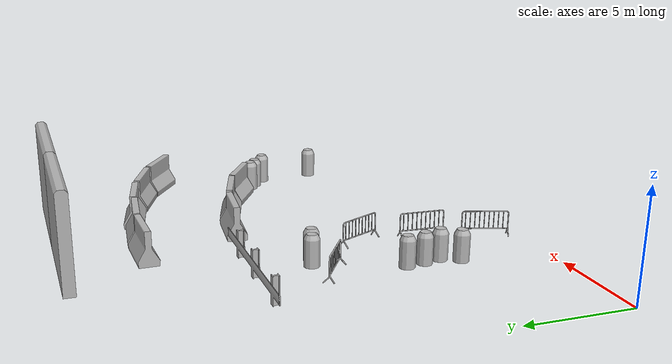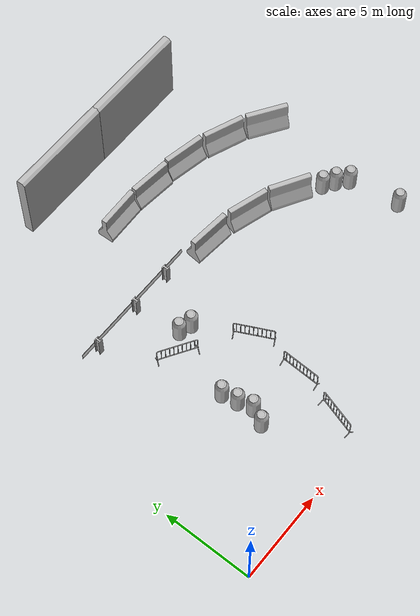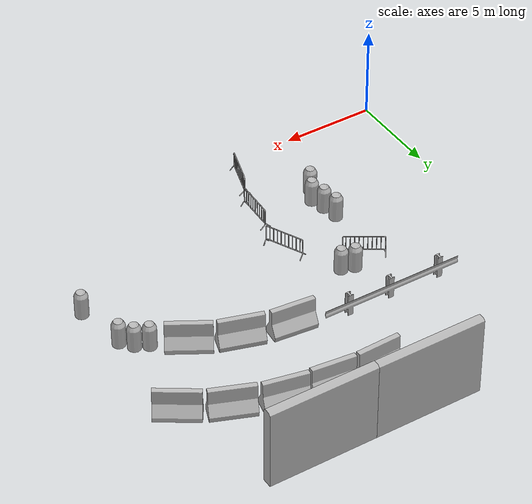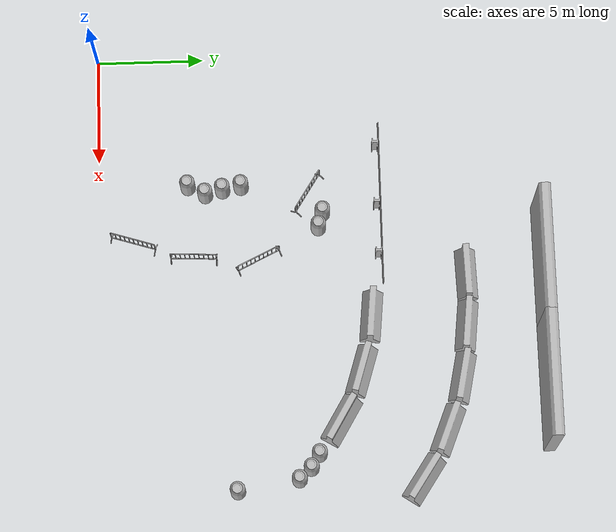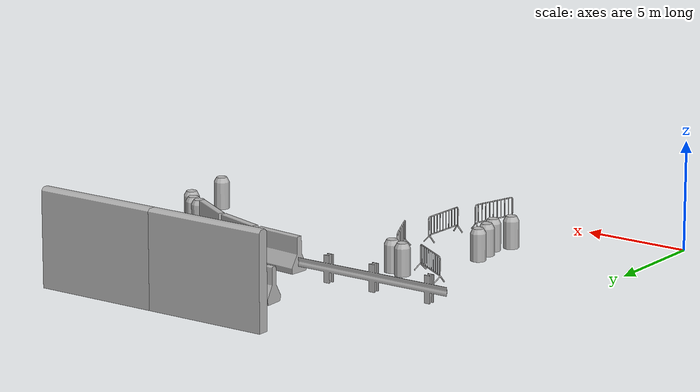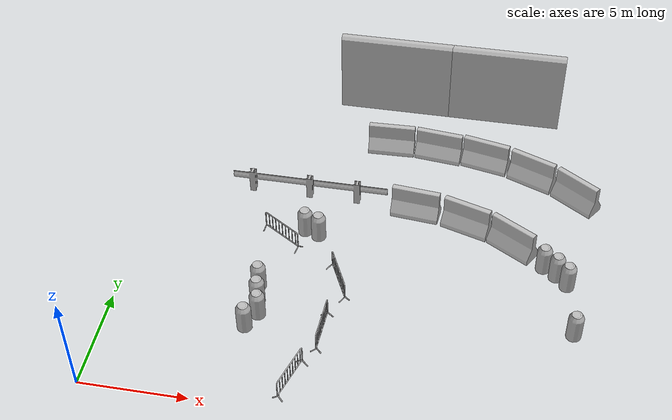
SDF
<sdf version="1.6">
 <world name="default">
  <model name="aws_robomaker_racetrack_CrashworthBucket_01_08">
   <link name="aws_CrashworthBucket_01::body">
    <inertial>
     <mass>5</mass>
     <inertia><ixx>1</ixx><ixy>0</ixy><ixz>0</ixz><iyy>1</iyy><iyz>0</iyz><izz>1</izz></inertia>
    </inertial>
    <visual name="visual">
     <geometry>
      <mesh>
       <uri>file://models/aws_robomaker_racetrack_CrashworthBucket_01/meshes/aws_CrashworthBucket_01_visual.DAE</uri>
      </mesh>
     </geometry>
     <material><shader type="pixel"><normal_map>__default__</normal_map></shader></material>
     <meta><layer>0</layer></meta>
    </visual>
    <collision name="collision_0">
     <geometry>
      <mesh>
       <uri>file://models/aws_robomaker_racetrack_CrashworthBucket_01/meshes/aws_CrashworthBucket_01_collision.DAE</uri>
       <scale>1 1 1</scale>
      </mesh>
     </geometry>
     <surface>
      <friction>
       <ode><mu>1</mu><mu2>1</mu2><fdir1>0 0 0</fdir1><slip1>0</slip1><slip2>0</slip2></ode>
       <torsional>
        <coefficient>1</coefficient>
        <patch_radius>0</patch_radius>
        <surface_radius>0</surface_radius>
        <use_patch_radius>1</use_patch_radius>
        <ode><slip>0</slip></ode>
       </torsional>
      </friction>
      <bounce><restitution_coefficient>0</restitution_coefficient><threshold>1e+06</threshold></bounce>
      <contact>
       <collide_without_contact>0</collide_without_contact>
       <collide_without_contact_bitmask>1</collide_without_contact_bitmask>
       <collide_bitmask>1</collide_bitmask>
       <ode>
        <soft_cfm>0</soft_cfm>
        <soft_erp>0.2</soft_erp>
        <kp>1e+13</kp>
        <kd>1</kd>
        <max_vel>0.01</max_vel>
        <min_depth>0</min_depth>
       </ode>
       <bullet>
        <split_impulse>1</split_impulse>
        <split_impulse_penetration_threshold>-0.01</split_impulse_penetration_threshold>
        <soft_cfm>0</soft_cfm>
        <soft_erp>0.2</soft_erp>
        <kp>1e+13</kp>
        <kd>1</kd>
       </bullet>
      </contact>
     </surface>
    </collision>
   </link>
   <static>1</static>
   <pose>8.58056 10.3426 0.054 0 -0 0</pose>
  </model>
  <model name="aws_robomaker_racetrack_CrashworthBucket_01_09">
   <link name="aws_CrashworthBucket_01::body">
    <inertial>
     <mass>5</mass>
     <inertia><ixx>1</ixx><ixy>0</ixy><ixz>0</ixz><iyy>1</iyy><iyz>0</iyz><izz>1</izz></inertia>
    </inertial>
    <visual name="visual">
     <geometry>
      <mesh>
       <uri>file://models/aws_robomaker_racetrack_CrashworthBucket_01/meshes/aws_CrashworthBucket_01_visual.DAE</uri>
      </mesh>
     </geometry>
     <material><shader type="pixel"><normal_map>__default__</normal_map></shader></material>
     <meta><layer>0</layer></meta>
    </visual>
    <collision name="collision_0">
     <geometry>
      <mesh>
       <uri>file://models/aws_robomaker_racetrack_CrashworthBucket_01/meshes/aws_CrashworthBucket_01_collision.DAE</uri>
       <scale>1 1 1</scale>
      </mesh>
     </geometry>
     <surface>
      <friction>
       <ode><mu>1</mu><mu2>1</mu2><fdir1>0 0 0</fdir1><slip1>0</slip1><slip2>0</slip2></ode>
       <torsional>
        <coefficient>1</coefficient>
        <patch_radius>0</patch_radius>
        <surface_radius>0</surface_radius>
        <use_patch_radius>1</use_patch_radius>
        <ode><slip>0</slip></ode>
       </torsional>
      </friction>
      <bounce><restitution_coefficient>0</restitution_coefficient><threshold>1e+06</threshold></bounce>
      <contact>
       <collide_without_contact>0</collide_without_contact>
       <collide_without_contact_bitmask>1</collide_without_contact_bitmask>
       <collide_bitmask>1</collide_bitmask>
       <ode>
        <soft_cfm>0</soft_cfm>
        <soft_erp>0.2</soft_erp>
        <kp>1e+13</kp>
        <kd>1</kd>
        <max_vel>0.01</max_vel>
        <min_depth>0</min_depth>
       </ode>
       <bullet>
        <split_impulse>1</split_impulse>
        <split_impulse_penetration_threshold>-0.01</split_impulse_penetration_threshold>
        <soft_cfm>0</soft_cfm>
        <soft_erp>0.2</soft_erp>
        <kp>1e+13</kp>
        <kd>1</kd>
       </bullet>
      </contact>
     </surface>
    </collision>
   </link>
   <static>1</static>
   <pose>7.88227 10.5539 0.054 0 -0 0</pose>
  </model>
  <model name="aws_robomaker_racetrack_CrashworthBucket_01_13">
   <link name="aws_CrashworthBucket_01::body">
    <inertial>
     <mass>5</mass>
     <inertia><ixx>1</ixx><ixy>0</ixy><ixz>0</ixz><iyy>1</iyy><iyz>0</iyz><izz>1</izz></inertia>
    </inertial>
    <visual name="visual">
     <geometry>
      <mesh>
       <uri>file://models/aws_robomaker_racetrack_CrashworthBucket_01/meshes/aws_CrashworthBucket_01_visual.DAE</uri>
      </mesh>
     </geometry>
     <material><shader type="pixel"><normal_map>__default__</normal_map></shader></material>
     <meta><layer>0</layer></meta>
    </visual>
    <collision name="collision_0">
     <geometry>
      <mesh>
       <uri>file://models/aws_robomaker_racetrack_CrashworthBucket_01/meshes/aws_CrashworthBucket_01_collision.DAE</uri>
       <scale>1 1 1</scale>
      </mesh>
     </geometry>
     <surface>
      <friction>
       <ode><mu>1</mu><mu2>1</mu2><fdir1>0 0 0</fdir1><slip1>0</slip1><slip2>0</slip2></ode>
       <torsional>
        <coefficient>1</coefficient>
        <patch_radius>0</patch_radius>
        <surface_radius>0</surface_radius>
        <use_patch_radius>1</use_patch_radius>
        <ode><slip>0</slip></ode>
       </torsional>
      </friction>
      <bounce><restitution_coefficient>0</restitution_coefficient><threshold>1e+06</threshold></bounce>
      <contact>
       <collide_without_contact>0</collide_without_contact>
       <collide_without_contact_bitmask>1</collide_without_contact_bitmask>
       <collide_bitmask>1</collide_bitmask>
       <ode>
        <soft_cfm>0</soft_cfm>
        <soft_erp>0.2</soft_erp>
        <kp>1e+13</kp>
        <kd>1</kd>
        <max_vel>0.01</max_vel>
        <min_depth>0</min_depth>
       </ode>
       <bullet>
        <split_impulse>1</split_impulse>
        <split_impulse_penetration_threshold>-0.01</split_impulse_penetration_threshold>
        <soft_cfm>0</soft_cfm>
        <soft_erp>0.2</soft_erp>
        <kp>1e+13</kp>
        <kd>1</kd>
       </bullet>
      </contact>
     </surface>
    </collision>
   </link>
   <static>1</static>
   <pose>20.9847 6.29253 0 0 -0 0</pose>
  </model>
  <model name="aws_robomaker_racetrack_CrashworthBucket_01_32">
   <link name="aws_CrashworthBucket_01::body">
    <inertial>
     <mass>5</mass>
     <inertia><ixx>1</ixx><ixy>0</ixy><ixz>0</ixz><iyy>1</iyy><iyz>0</iyz><izz>1</izz></inertia>
    </inertial>
    <visual name="visual">
     <geometry>
      <mesh>
       <uri>file://models/aws_robomaker_racetrack_CrashworthBucket_01/meshes/aws_CrashworthBucket_01_visual.DAE</uri>
      </mesh>
     </geometry>
     <material><shader type="pixel"><normal_map>__default__</normal_map></shader></material>
     <meta><layer>0</layer></meta>
    </visual>
    <collision name="collision_0">
     <geometry>
      <mesh>
       <uri>file://models/aws_robomaker_racetrack_CrashworthBucket_01/meshes/aws_CrashworthBucket_01_collision.DAE</uri>
       <scale>1 1 1</scale>
      </mesh>
     </geometry>
     <surface>
      <friction>
       <ode><mu>1</mu><mu2>1</mu2><fdir1>0 0 0</fdir1><slip1>0</slip1><slip2>0</slip2></ode>
       <torsional>
        <coefficient>1</coefficient>
        <patch_radius>0</patch_radius>
        <surface_radius>0</surface_radius>
        <use_patch_radius>1</use_patch_radius>
        <ode><slip>0</slip></ode>
       </torsional>
      </friction>
      <bounce><restitution_coefficient>0</restitution_coefficient><threshold>1e+06</threshold></bounce>
      <contact>
       <collide_without_contact>0</collide_without_contact>
       <collide_without_contact_bitmask>1</collide_without_contact_bitmask>
       <collide_bitmask>1</collide_bitmask>
       <ode>
        <soft_cfm>0</soft_cfm>
        <soft_erp>0.2</soft_erp>
        <kp>1e+13</kp>
        <kd>1</kd>
        <max_vel>0.01</max_vel>
        <min_depth>0</min_depth>
       </ode>
       <bullet>
        <split_impulse>1</split_impulse>
        <split_impulse_penetration_threshold>-0.01</split_impulse_penetration_threshold>
        <soft_cfm>0</soft_cfm>
        <soft_erp>0.2</soft_erp>
        <kp>1e+13</kp>
        <kd>1</kd>
       </bullet>
      </contact>
     </surface>
    </collision>
   </link>
   <static>1</static>
   <pose>20.5304 9.13561 0.054 0 0 -0.001449</pose>
  </model>
  <model name="aws_robomaker_racetrack_CrashworthBucket_01_33">
   <link name="aws_CrashworthBucket_01::body">
    <inertial>
     <mass>5</mass>
     <inertia><ixx>1</ixx><ixy>0</ixy><ixz>0</ixz><iyy>1</iyy><iyz>0</iyz><izz>1</izz></inertia>
    </inertial>
    <visual name="visual">
     <geometry>
      <mesh>
       <uri>file://models/aws_robomaker_racetrack_CrashworthBucket_01/meshes/aws_CrashworthBucket_01_visual.DAE</uri>
      </mesh>
     </geometry>
     <material><shader type="pixel"><normal_map>__default__</normal_map></shader></material>
     <meta><layer>0</layer></meta>
    </visual>
    <collision name="collision_0">
     <geometry>
      <mesh>
       <uri>file://models/aws_robomaker_racetrack_CrashworthBucket_01/meshes/aws_CrashworthBucket_01_collision.DAE</uri>
       <scale>1 1 1</scale>
      </mesh>
     </geometry>
     <surface>
      <friction>
       <ode><mu>1</mu><mu2>1</mu2><fdir1>0 0 0</fdir1><slip1>0</slip1><slip2>0</slip2></ode>
       <torsional>
        <coefficient>1</coefficient>
        <patch_radius>0</patch_radius>
        <surface_radius>0</surface_radius>
        <use_patch_radius>1</use_patch_radius>
        <ode><slip>0</slip></ode>
       </torsional>
      </friction>
      <bounce><restitution_coefficient>0</restitution_coefficient><threshold>1e+06</threshold></bounce>
      <contact>
       <collide_without_contact>0</collide_without_contact>
       <collide_without_contact_bitmask>1</collide_without_contact_bitmask>
       <collide_bitmask>1</collide_bitmask>
       <ode>
        <soft_cfm>0</soft_cfm>
        <soft_erp>0.2</soft_erp>
        <kp>1e+13</kp>
        <kd>1</kd>
        <max_vel>0.01</max_vel>
        <min_depth>0</min_depth>
       </ode>
       <bullet>
        <split_impulse>1</split_impulse>
        <split_impulse_penetration_threshold>-0.01</split_impulse_penetration_threshold>
        <soft_cfm>0</soft_cfm>
        <soft_erp>0.2</soft_erp>
        <kp>1e+13</kp>
        <kd>1</kd>
       </bullet>
      </contact>
     </surface>
    </collision>
   </link>
   <static>1</static>
   <pose>19.3714 10.0864 0.054 0 -0 0</pose>
  </model>
  <model name="aws_robomaker_racetrack_CrashworthBucket_01_34">
   <link name="aws_CrashworthBucket_01::body">
    <inertial>
     <mass>5</mass>
     <inertia><ixx>1</ixx><ixy>0</ixy><ixz>0</ixz><iyy>1</iyy><iyz>0</iyz><izz>1</izz></inertia>
    </inertial>
    <visual name="visual">
     <geometry>
      <mesh>
       <uri>file://models/aws_robomaker_racetrack_CrashworthBucket_01/meshes/aws_CrashworthBucket_01_visual.DAE</uri>
      </mesh>
     </geometry>
     <material><shader type="pixel"><normal_map>__default__</normal_map></shader></material>
     <meta><layer>0</layer></meta>
    </visual>
    <collision name="collision_0">
     <geometry>
      <mesh>
       <uri>file://models/aws_robomaker_racetrack_CrashworthBucket_01/meshes/aws_CrashworthBucket_01_collision.DAE</uri>
       <scale>1 1 1</scale>
      </mesh>
     </geometry>
     <surface>
      <friction>
       <ode><mu>1</mu><mu2>1</mu2><fdir1>0 0 0</fdir1><slip1>0</slip1><slip2>0</slip2></ode>
       <torsional>
        <coefficient>1</coefficient>
        <patch_radius>0</patch_radius>
        <surface_radius>0</surface_radius>
        <use_patch_radius>1</use_patch_radius>
        <ode><slip>0</slip></ode>
       </torsional>
      </friction>
      <bounce><restitution_coefficient>0</restitution_coefficient><threshold>1e+06</threshold></bounce>
      <contact>
       <collide_without_contact>0</collide_without_contact>
       <collide_without_contact_bitmask>1</collide_without_contact_bitmask>
       <collide_bitmask>1</collide_bitmask>
       <ode>
        <soft_cfm>0</soft_cfm>
        <soft_erp>0.2</soft_erp>
        <kp>1e+13</kp>
        <kd>1</kd>
        <max_vel>0.01</max_vel>
        <min_depth>0</min_depth>
       </ode>
       <bullet>
        <split_impulse>1</split_impulse>
        <split_impulse_penetration_threshold>-0.01</split_impulse_penetration_threshold>
        <soft_cfm>0</soft_cfm>
        <soft_erp>0.2</soft_erp>
        <kp>1e+13</kp>
        <kd>1</kd>
       </bullet>
      </contact>
     </surface>
    </collision>
   </link>
   <static>1</static>
   <pose>20.0016 9.69426 0 0 0 -0.00182</pose>
  </model>
  <model name="aws_robomaker_racetrack_CrashworthBucket_01_39">
   <link name="aws_CrashworthBucket_01::body">
    <inertial>
     <mass>5</mass>
     <inertia><ixx>1</ixx><ixy>0</ixy><ixz>0</ixz><iyy>1</iyy><iyz>0</iyz><izz>1</izz></inertia>
    </inertial>
    <visual name="visual">
     <geometry>
      <mesh>
       <uri>file://models/aws_robomaker_racetrack_CrashworthBucket_01/meshes/aws_CrashworthBucket_01_visual.DAE</uri>
      </mesh>
     </geometry>
     <material><shader type="pixel"><normal_map>__default__</normal_map></shader></material>
     <meta><layer>0</layer></meta>
    </visual>
    <collision name="collision_0">
     <geometry>
      <mesh>
       <uri>file://models/aws_robomaker_racetrack_CrashworthBucket_01/meshes/aws_CrashworthBucket_01_collision.DAE</uri>
       <scale>1 1 1</scale>
      </mesh>
     </geometry>
     <surface>
      <friction>
       <ode><mu>1</mu><mu2>1</mu2><fdir1>0 0 0</fdir1><slip1>0</slip1><slip2>0</slip2></ode>
       <torsional>
        <coefficient>1</coefficient>
        <patch_radius>0</patch_radius>
        <surface_radius>0</surface_radius>
        <use_patch_radius>1</use_patch_radius>
        <ode><slip>0</slip></ode>
       </torsional>
      </friction>
      <bounce><restitution_coefficient>0</restitution_coefficient><threshold>1e+06</threshold></bounce>
      <contact>
       <collide_without_contact>0</collide_without_contact>
       <collide_without_contact_bitmask>1</collide_without_contact_bitmask>
       <collide_bitmask>1</collide_bitmask>
       <ode>
        <soft_cfm>0</soft_cfm>
        <soft_erp>0.2</soft_erp>
        <kp>1e+13</kp>
        <kd>1</kd>
        <max_vel>0.01</max_vel>
        <min_depth>0</min_depth>
       </ode>
       <bullet>
        <split_impulse>1</split_impulse>
        <split_impulse_penetration_threshold>-0.01</split_impulse_penetration_threshold>
        <soft_cfm>0</soft_cfm>
        <soft_erp>0.2</soft_erp>
        <kp>1e+13</kp>
        <kd>1</kd>
       </bullet>
      </contact>
     </surface>
    </collision>
   </link>
   <static>1</static>
   <pose>6.48514 6.73841 0.054 0 -0 0</pose>
  </model>
  <model name="aws_robomaker_racetrack_CrashworthBucket_01_40">
   <link name="aws_CrashworthBucket_01::body">
    <inertial>
     <mass>5</mass>
     <inertia><ixx>1</ixx><ixy>0</ixy><ixz>0</ixz><iyy>1</iyy><iyz>0</iyz><izz>1</izz></inertia>
    </inertial>
    <visual name="visual">
     <geometry>
      <mesh>
       <uri>file://models/aws_robomaker_racetrack_CrashworthBucket_01/meshes/aws_CrashworthBucket_01_visual.DAE</uri>
      </mesh>
     </geometry>
     <material><shader type="pixel"><normal_map>__default__</normal_map></shader></material>
     <meta><layer>0</layer></meta>
    </visual>
    <collision name="collision_0">
     <geometry>
      <mesh>
       <uri>file://models/aws_robomaker_racetrack_CrashworthBucket_01/meshes/aws_CrashworthBucket_01_collision.DAE</uri>
       <scale>1 1 1</scale>
      </mesh>
     </geometry>
     <surface>
      <friction>
       <ode><mu>1</mu><mu2>1</mu2><fdir1>0 0 0</fdir1><slip1>0</slip1><slip2>0</slip2></ode>
       <torsional>
        <coefficient>1</coefficient>
        <patch_radius>0</patch_radius>
        <surface_radius>0</surface_radius>
        <use_patch_radius>1</use_patch_radius>
        <ode><slip>0</slip></ode>
       </torsional>
      </friction>
      <bounce><restitution_coefficient>0</restitution_coefficient><threshold>1e+06</threshold></bounce>
      <contact>
       <collide_without_contact>0</collide_without_contact>
       <collide_without_contact_bitmask>1</collide_without_contact_bitmask>
       <collide_bitmask>1</collide_bitmask>
       <ode>
        <soft_cfm>0</soft_cfm>
        <soft_erp>0.2</soft_erp>
        <kp>1e+13</kp>
        <kd>1</kd>
        <max_vel>0.01</max_vel>
        <min_depth>0</min_depth>
       </ode>
       <bullet>
        <split_impulse>1</split_impulse>
        <split_impulse_penetration_threshold>-0.01</split_impulse_penetration_threshold>
        <soft_cfm>0</soft_cfm>
        <soft_erp>0.2</soft_erp>
        <kp>1e+13</kp>
        <kd>1</kd>
       </bullet>
      </contact>
     </surface>
    </collision>
   </link>
   <static>1</static>
   <pose>6.63137 5.86016 0.054 0 -0 0</pose>
  </model>
  <model name="aws_robomaker_racetrack_CrashworthBucket_01_41">
   <link name="aws_CrashworthBucket_01::body">
    <inertial>
     <mass>5</mass>
     <inertia><ixx>1</ixx><ixy>0</ixy><ixz>0</ixz><iyy>1</iyy><iyz>0</iyz><izz>1</izz></inertia>
    </inertial>
    <visual name="visual">
     <geometry>
      <mesh>
       <uri>file://models/aws_robomaker_racetrack_CrashworthBucket_01/meshes/aws_CrashworthBucket_01_visual.DAE</uri>
      </mesh>
     </geometry>
     <material><shader type="pixel"><normal_map>__default__</normal_map></shader></material>
     <meta><layer>0</layer></meta>
    </visual>
    <collision name="collision_0">
     <geometry>
      <mesh>
       <uri>file://models/aws_robomaker_racetrack_CrashworthBucket_01/meshes/aws_CrashworthBucket_01_collision.DAE</uri>
       <scale>1 1 1</scale>
      </mesh>
     </geometry>
     <surface>
      <friction>
       <ode><mu>1</mu><mu2>1</mu2><fdir1>0 0 0</fdir1><slip1>0</slip1><slip2>0</slip2></ode>
       <torsional>
        <coefficient>1</coefficient>
        <patch_radius>0</patch_radius>
        <surface_radius>0</surface_radius>
        <use_patch_radius>1</use_patch_radius>
        <ode><slip>0</slip></ode>
       </torsional>
      </friction>
      <bounce><restitution_coefficient>0</restitution_coefficient><threshold>1e+06</threshold></bounce>
      <contact>
       <collide_without_contact>0</collide_without_contact>
       <collide_without_contact_bitmask>1</collide_without_contact_bitmask>
       <collide_bitmask>1</collide_bitmask>
       <ode>
        <soft_cfm>0</soft_cfm>
        <soft_erp>0.2</soft_erp>
        <kp>1e+13</kp>
        <kd>1</kd>
        <max_vel>0.01</max_vel>
        <min_depth>0</min_depth>
       </ode>
       <bullet>
        <split_impulse>1</split_impulse>
        <split_impulse_penetration_threshold>-0.01</split_impulse_penetration_threshold>
        <soft_cfm>0</soft_cfm>
        <soft_erp>0.2</soft_erp>
        <kp>1e+13</kp>
        <kd>1</kd>
       </bullet>
      </contact>
     </surface>
    </collision>
   </link>
   <static>1</static>
   <pose>6.84089 5.04433 0.054 0 -0 0</pose>
  </model>
  <model name="aws_robomaker_racetrack_CrashworthBucket_01_42">
   <link name="aws_CrashworthBucket_01::body">
    <inertial>
     <mass>5</mass>
     <inertia><ixx>1</ixx><ixy>0</ixy><ixz>0</ixz><iyy>1</iyy><iyz>0</iyz><izz>1</izz></inertia>
    </inertial>
    <visual name="visual">
     <geometry>
      <mesh>
       <uri>file://models/aws_robomaker_racetrack_CrashworthBucket_01/meshes/aws_CrashworthBucket_01_visual.DAE</uri>
      </mesh>
     </geometry>
     <material><shader type="pixel"><normal_map>__default__</normal_map></shader></material>
     <meta><layer>0</layer></meta>
    </visual>
    <collision name="collision_0">
     <geometry>
      <mesh>
       <uri>file://models/aws_robomaker_racetrack_CrashworthBucket_01/meshes/aws_CrashworthBucket_01_collision.DAE</uri>
       <scale>1 1 1</scale>
      </mesh>
     </geometry>
     <surface>
      <friction>
       <ode><mu>1</mu><mu2>1</mu2><fdir1>0 0 0</fdir1><slip1>0</slip1><slip2>0</slip2></ode>
       <torsional>
        <coefficient>1</coefficient>
        <patch_radius>0</patch_radius>
        <surface_radius>0</surface_radius>
        <use_patch_radius>1</use_patch_radius>
        <ode><slip>0</slip></ode>
       </torsional>
      </friction>
      <bounce><restitution_coefficient>0</restitution_coefficient><threshold>1e+06</threshold></bounce>
      <contact>
       <collide_without_contact>0</collide_without_contact>
       <collide_without_contact_bitmask>1</collide_without_contact_bitmask>
       <collide_bitmask>1</collide_bitmask>
       <ode>
        <soft_cfm>0</soft_cfm>
        <soft_erp>0.2</soft_erp>
        <kp>1e+13</kp>
        <kd>1</kd>
        <max_vel>0.01</max_vel>
        <min_depth>0</min_depth>
       </ode>
       <bullet>
        <split_impulse>1</split_impulse>
        <split_impulse_penetration_threshold>-0.01</split_impulse_penetration_threshold>
        <soft_cfm>0</soft_cfm>
        <soft_erp>0.2</soft_erp>
        <kp>1e+13</kp>
        <kd>1</kd>
       </bullet>
      </contact>
     </surface>
    </collision>
   </link>
   <static>1</static>
   <pose>6.41586 4.22597 0.054 0 -0 0</pose>
  </model>
  <model name="aws_robomaker_racetrack_Fence_01_00">
   <link name="aws_Fence_01::body">
    <inertial>
     <mass>5</mass>
     <inertia><ixx>1</ixx><ixy>0</ixy><ixz>0</ixz><iyy>1</iyy><iyz>0</iyz><izz>1</izz></inertia>
    </inertial>
    <visual name="visual">
     <geometry>
      <mesh><uri>file://models/aws_robomaker_racetrack_Fence_01/meshes/aws_Fence_01_visual.DAE</uri></mesh>
     </geometry>
     <material><shader type="pixel"><normal_map>__default__</normal_map></shader></material>
     <meta><layer>0</layer></meta>
    </visual>
    <collision name="collision_0">
     <geometry>
      <mesh>
       <uri>file://models/aws_robomaker_racetrack_Fence_01/meshes/aws_Fence_01_collision.DAE</uri>
       <scale>1 1 1</scale>
      </mesh>
     </geometry>
     <surface>
      <friction>
       <ode><mu>1</mu><mu2>1</mu2><fdir1>0 0 0</fdir1><slip1>0</slip1><slip2>0</slip2></ode>
       <torsional>
        <coefficient>1</coefficient>
        <patch_radius>0</patch_radius>
        <surface_radius>0</surface_radius>
        <use_patch_radius>1</use_patch_radius>
        <ode><slip>0</slip></ode>
       </torsional>
      </friction>
      <bounce><restitution_coefficient>0</restitution_coefficient><threshold>1e+06</threshold></bounce>
      <contact>
       <collide_without_contact>0</collide_without_contact>
       <collide_without_contact_bitmask>1</collide_without_contact_bitmask>
       <collide_bitmask>1</collide_bitmask>
       <ode>
        <soft_cfm>0</soft_cfm>
        <soft_erp>0.2</soft_erp>
        <kp>1e+13</kp>
        <kd>1</kd>
        <max_vel>0.01</max_vel>
        <min_depth>0</min_depth>
       </ode>
       <bullet>
        <split_impulse>1</split_impulse>
        <split_impulse_penetration_threshold>-0.01</split_impulse_penetration_threshold>
        <soft_cfm>0</soft_cfm>
        <soft_erp>0.2</soft_erp>
        <kp>1e+13</kp>
        <kd>1</kd>
       </bullet>
      </contact>
     </surface>
    </collision>
   </link>
   <static>1</static>
   <pose>7.553 13.1587 0 0 0 -1.57272</pose>
  </model>
  <model name="aws_robomaker_racetrack_Fence_02_01">
   <link name="aws_Fence_02::body">
    <inertial>
     <mass>5</mass>
     <inertia><ixx>9.6</ixx><ixy>0</ixy><ixz>0</ixz><iyy>8.2</iyy><iyz>0</iyz><izz>2.1</izz></inertia>
    </inertial>
    <visual name="visual">
     <geometry>
      <mesh><uri>file://models/aws_robomaker_racetrack_Fence_02/meshes/aws_Fence_02_visual.DAE</uri></mesh>
     </geometry>
     <material><shader type="pixel"><normal_map>__default__</normal_map></shader></material>
     <meta><layer>0</layer></meta>
    </visual>
    <collision name="collision_0">
     <geometry>
      <mesh>
       <uri>file://models/aws_robomaker_racetrack_Fence_02/meshes/aws_Fence_02_collision.DAE</uri>
       <scale>1 1 1</scale>
      </mesh>
     </geometry>
     <surface>
      <friction>
       <ode><mu>1</mu><mu2>1</mu2><fdir1>0 0 0</fdir1><slip1>0</slip1><slip2>0</slip2></ode>
       <torsional>
        <coefficient>1</coefficient>
        <patch_radius>0</patch_radius>
        <surface_radius>0</surface_radius>
        <use_patch_radius>1</use_patch_radius>
        <ode><slip>0</slip></ode>
       </torsional>
      </friction>
      <bounce><restitution_coefficient>0</restitution_coefficient><threshold>1e+06</threshold></bounce>
      <contact>
       <collide_without_contact>0</collide_without_contact>
       <collide_without_contact_bitmask>1</collide_without_contact_bitmask>
       <collide_bitmask>1</collide_bitmask>
      </contact>
     </surface>
    </collision>
   </link>
   <static>1</static>
   <pose>9.06357 1.626 0 0 0 -0.300407</pose>
  </model>
  <model name="aws_robomaker_racetrack_Fence_02_06">
   <link name="aws_Fence_02::body">
    <inertial>
     <mass>5</mass>
     <inertia><ixx>9.6</ixx><ixy>0</ixy><ixz>0</ixz><iyy>8.2</iyy><iyz>0</iyz><izz>2.1</izz></inertia>
    </inertial>
    <visual name="visual">
     <geometry>
      <mesh><uri>file://models/aws_robomaker_racetrack_Fence_02/meshes/aws_Fence_02_visual.DAE</uri></mesh>
     </geometry>
     <material><shader type="pixel"><normal_map>__default__</normal_map></shader></material>
     <meta><layer>0</layer></meta>
    </visual>
    <collision name="collision_0">
     <geometry>
      <mesh>
       <uri>file://models/aws_robomaker_racetrack_Fence_02/meshes/aws_Fence_02_collision.DAE</uri>
       <scale>1 1 1</scale>
      </mesh>
     </geometry>
     <surface>
      <friction>
       <ode><mu>1</mu><mu2>1</mu2><fdir1>0 0 0</fdir1><slip1>0</slip1><slip2>0</slip2></ode>
       <torsional>
        <coefficient>1</coefficient>
        <patch_radius>0</patch_radius>
        <surface_radius>0</surface_radius>
        <use_patch_radius>1</use_patch_radius>
        <ode><slip>0</slip></ode>
       </torsional>
      </friction>
      <bounce><restitution_coefficient>0</restitution_coefficient><threshold>1e+06</threshold></bounce>
      <contact>
       <collide_without_contact>0</collide_without_contact>
       <collide_without_contact_bitmask>1</collide_without_contact_bitmask>
       <collide_bitmask>1</collide_bitmask>
      </contact>
     </surface>
    </collision>
   </link>
   <static>1</static>
   <pose>6.89586 9.88798 0 0 0 -2.14047</pose>
  </model>
  <model name="aws_robomaker_racetrack_Fence_02_10">
   <link name="aws_Fence_02::body">
    <inertial>
     <mass>5</mass>
     <inertia><ixx>9.6</ixx><ixy>0</ixy><ixz>0</ixz><iyy>8.2</iyy><iyz>0</iyz><izz>2.1</izz></inertia>
    </inertial>
    <visual name="visual">
     <geometry>
      <mesh><uri>file://models/aws_robomaker_racetrack_Fence_02/meshes/aws_Fence_02_visual.DAE</uri></mesh>
     </geometry>
     <material><shader type="pixel"><normal_map>__default__</normal_map></shader></material>
     <meta><layer>0</layer></meta>
    </visual>
    <collision name="collision_0">
     <geometry>
      <mesh>
       <uri>file://models/aws_robomaker_racetrack_Fence_02/meshes/aws_Fence_02_collision.DAE</uri>
       <scale>1 1 1</scale>
      </mesh>
     </geometry>
     <surface>
      <friction>
       <ode><mu>1</mu><mu2>1</mu2><fdir1>0 0 0</fdir1><slip1>0</slip1><slip2>0</slip2></ode>
       <torsional>
        <coefficient>1</coefficient>
        <patch_radius>0</patch_radius>
        <surface_radius>0</surface_radius>
        <use_patch_radius>1</use_patch_radius>
        <ode><slip>0</slip></ode>
       </torsional>
      </friction>
      <bounce><restitution_coefficient>0</restitution_coefficient><threshold>1e+06</threshold></bounce>
      <contact>
       <collide_without_contact>0</collide_without_contact>
       <collide_without_contact_bitmask>1</collide_without_contact_bitmask>
       <collide_bitmask>1</collide_bitmask>
      </contact>
     </surface>
    </collision>
   </link>
   <static>1</static>
   <pose>9.89165 4.45225 0 0 0 -0.045392</pose>
  </model>
  <model name="aws_robomaker_racetrack_Fence_02_11">
   <link name="aws_Fence_02::body">
    <inertial>
     <mass>5</mass>
     <inertia><ixx>9.6</ixx><ixy>0</ixy><ixz>0</ixz><iyy>8.2</iyy><iyz>0</iyz><izz>2.1</izz></inertia>
    </inertial>
    <visual name="visual">
     <geometry>
      <mesh><uri>file://models/aws_robomaker_racetrack_Fence_02/meshes/aws_Fence_02_visual.DAE</uri></mesh>
     </geometry>
     <material><shader type="pixel"><normal_map>__default__</normal_map></shader></material>
     <meta><layer>0</layer></meta>
    </visual>
    <collision name="collision_0">
     <geometry>
      <mesh>
       <uri>file://models/aws_robomaker_racetrack_Fence_02/meshes/aws_Fence_02_collision.DAE</uri>
       <scale>1 1 1</scale>
      </mesh>
     </geometry>
     <surface>
      <friction>
       <ode><mu>1</mu><mu2>1</mu2><fdir1>0 0 0</fdir1><slip1>0</slip1><slip2>0</slip2></ode>
       <torsional>
        <coefficient>1</coefficient>
        <patch_radius>0</patch_radius>
        <surface_radius>0</surface_radius>
        <use_patch_radius>1</use_patch_radius>
        <ode><slip>0</slip></ode>
       </torsional>
      </friction>
      <bounce><restitution_coefficient>0</restitution_coefficient><threshold>1e+06</threshold></bounce>
      <contact>
       <collide_without_contact>0</collide_without_contact>
       <collide_without_contact_bitmask>1</collide_without_contact_bitmask>
       <collide_bitmask>1</collide_bitmask>
      </contact>
     </surface>
    </collision>
   </link>
   <static>1</static>
   <pose>10.0686 7.48939 0 0 -0 0.450699</pose>
  </model>
  <model name="aws_robomaker_racetrack_StonePier_01_05">
   <link name="aws_StonePier_01::body">
    <inertial>
     <mass>10</mass>
     <inertia><ixx>0</ixx><ixy>0</ixy><ixz>0</ixz><iyy>0</iyy><iyz>0</iyz><izz>0</izz></inertia>
    </inertial>
    <visual name="visual">
     <geometry>
      <mesh><uri>file://models/aws_robomaker_racetrack_StonePier_01/meshes/aws_StonePier_01_visual.DAE</uri></mesh>
     </geometry>
     <material><shader type="pixel"><normal_map>__default__</normal_map></shader></material>
     <meta><layer>0</layer></meta>
    </visual>
    <collision name="collision_0">
     <geometry>
      <mesh>
       <uri>file://models/aws_robomaker_racetrack_StonePier_01/meshes/aws_StonePier_01_collision.DAE</uri>
       <scale>1 1 1</scale>
      </mesh>
     </geometry>
     <surface>
      <friction>
       <ode><mu>1</mu><mu2>1</mu2><fdir1>0 0 0</fdir1><slip1>0</slip1><slip2>0</slip2></ode>
       <torsional>
        <coefficient>1</coefficient>
        <patch_radius>0</patch_radius>
        <surface_radius>0</surface_radius>
        <use_patch_radius>1</use_patch_radius>
        <ode><slip>0</slip></ode>
       </torsional>
      </friction>
      <bounce><restitution_coefficient>0</restitution_coefficient><threshold>1e+06</threshold></bounce>
      <contact>
       <collide_without_contact>0</collide_without_contact>
       <collide_without_contact_bitmask>1</collide_without_contact_bitmask>
       <collide_bitmask>1</collide_bitmask>
       <ode>
        <soft_cfm>0</soft_cfm>
        <soft_erp>0.2</soft_erp>
        <kp>1e+13</kp>
        <kd>1</kd>
        <max_vel>0.01</max_vel>
        <min_depth>0</min_depth>
       </ode>
       <bullet>
        <split_impulse>1</split_impulse>
        <split_impulse_penetration_threshold>-0.01</split_impulse_penetration_threshold>
        <soft_cfm>0</soft_cfm>
        <soft_erp>0.2</soft_erp>
        <kp>1e+13</kp>
        <kd>1</kd>
       </bullet>
      </contact>
     </surface>
    </collision>
   </link>
   <static>1</static>
   <pose>11.0892 17.2043 0.054 0 -0 0.029389</pose>
  </model>
  <model name="aws_robomaker_racetrack_StonePier_01_06">
   <link name="aws_StonePier_01::body">
    <inertial>
     <mass>10</mass>
     <inertia><ixx>0</ixx><ixy>0</ixy><ixz>0</ixz><iyy>0</iyy><iyz>0</iyz><izz>0</izz></inertia>
    </inertial>
    <visual name="visual">
     <geometry>
      <mesh><uri>file://models/aws_robomaker_racetrack_StonePier_01/meshes/aws_StonePier_01_visual.DAE</uri></mesh>
     </geometry>
     <material><shader type="pixel"><normal_map>__default__</normal_map></shader></material>
     <meta><layer>0</layer></meta>
    </visual>
    <collision name="collision_0">
     <geometry>
      <mesh>
       <uri>file://models/aws_robomaker_racetrack_StonePier_01/meshes/aws_StonePier_01_collision.DAE</uri>
       <scale>1 1 1</scale>
      </mesh>
     </geometry>
     <surface>
      <friction>
       <ode><mu>1</mu><mu2>1</mu2><fdir1>0 0 0</fdir1><slip1>0</slip1><slip2>0</slip2></ode>
       <torsional>
        <coefficient>1</coefficient>
        <patch_radius>0</patch_radius>
        <surface_radius>0</surface_radius>
        <use_patch_radius>1</use_patch_radius>
        <ode><slip>0</slip></ode>
       </torsional>
      </friction>
      <bounce><restitution_coefficient>0</restitution_coefficient><threshold>1e+06</threshold></bounce>
      <contact>
       <collide_without_contact>0</collide_without_contact>
       <collide_without_contact_bitmask>1</collide_without_contact_bitmask>
       <collide_bitmask>1</collide_bitmask>
       <ode>
        <soft_cfm>0</soft_cfm>
        <soft_erp>0.2</soft_erp>
        <kp>1e+13</kp>
        <kd>1</kd>
        <max_vel>0.01</max_vel>
        <min_depth>0</min_depth>
       </ode>
       <bullet>
        <split_impulse>1</split_impulse>
        <split_impulse_penetration_threshold>-0.01</split_impulse_penetration_threshold>
        <soft_cfm>0</soft_cfm>
        <soft_erp>0.2</soft_erp>
        <kp>1e+13</kp>
        <kd>1</kd>
       </bullet>
      </contact>
     </surface>
    </collision>
   </link>
   <static>1</static>
   <pose>13.5633 17.1121 0.054 0 0 -0.108086</pose>
  </model>
  <model name="aws_robomaker_racetrack_StonePier_01_07">
   <link name="aws_StonePier_01::body">
    <inertial>
     <mass>10</mass>
     <inertia><ixx>0</ixx><ixy>0</ixy><ixz>0</ixz><iyy>0</iyy><iyz>0</iyz><izz>0</izz></inertia>
    </inertial>
    <visual name="visual">
     <geometry>
      <mesh><uri>file://models/aws_robomaker_racetrack_StonePier_01/meshes/aws_StonePier_01_visual.DAE</uri></mesh>
     </geometry>
     <material><shader type="pixel"><normal_map>__default__</normal_map></shader></material>
     <meta><layer>0</layer></meta>
    </visual>
    <collision name="collision_0">
     <geometry>
      <mesh>
       <uri>file://models/aws_robomaker_racetrack_StonePier_01/meshes/aws_StonePier_01_collision.DAE</uri>
       <scale>1 1 1</scale>
      </mesh>
     </geometry>
     <surface>
      <friction>
       <ode><mu>1</mu><mu2>1</mu2><fdir1>0 0 0</fdir1><slip1>0</slip1><slip2>0</slip2></ode>
       <torsional>
        <coefficient>1</coefficient>
        <patch_radius>0</patch_radius>
        <surface_radius>0</surface_radius>
        <use_patch_radius>1</use_patch_radius>
        <ode><slip>0</slip></ode>
       </torsional>
      </friction>
      <bounce><restitution_coefficient>0</restitution_coefficient><threshold>1e+06</threshold></bounce>
      <contact>
       <collide_without_contact>0</collide_without_contact>
       <collide_without_contact_bitmask>1</collide_without_contact_bitmask>
       <collide_bitmask>1</collide_bitmask>
       <ode>
        <soft_cfm>0</soft_cfm>
        <soft_erp>0.2</soft_erp>
        <kp>1e+13</kp>
        <kd>1</kd>
        <max_vel>0.01</max_vel>
        <min_depth>0</min_depth>
       </ode>
       <bullet>
        <split_impulse>1</split_impulse>
        <split_impulse_penetration_threshold>-0.01</split_impulse_penetration_threshold>
        <soft_cfm>0</soft_cfm>
        <soft_erp>0.2</soft_erp>
        <kp>1e+13</kp>
        <kd>1</kd>
       </bullet>
      </contact>
     </surface>
    </collision>
   </link>
   <static>1</static>
   <pose>16.0013 16.8104 0.054 0 0 -0.206147</pose>
  </model>
  <model name="aws_robomaker_racetrack_StonePier_01_08">
   <link name="aws_StonePier_01::body">
    <inertial>
     <mass>10</mass>
     <inertia><ixx>0</ixx><ixy>0</ixy><ixz>0</ixz><iyy>0</iyy><iyz>0</iyz><izz>0</izz></inertia>
    </inertial>
    <visual name="visual">
     <geometry>
      <mesh><uri>file://models/aws_robomaker_racetrack_StonePier_01/meshes/aws_StonePier_01_visual.DAE</uri></mesh>
     </geometry>
     <material><shader type="pixel"><normal_map>__default__</normal_map></shader></material>
     <meta><layer>0</layer></meta>
    </visual>
    <collision name="collision_0">
     <geometry>
      <mesh>
       <uri>file://models/aws_robomaker_racetrack_StonePier_01/meshes/aws_StonePier_01_collision.DAE</uri>
       <scale>1 1 1</scale>
      </mesh>
     </geometry>
     <surface>
      <friction>
       <ode><mu>1</mu><mu2>1</mu2><fdir1>0 0 0</fdir1><slip1>0</slip1><slip2>0</slip2></ode>
       <torsional>
        <coefficient>1</coefficient>
        <patch_radius>0</patch_radius>
        <surface_radius>0</surface_radius>
        <use_patch_radius>1</use_patch_radius>
        <ode><slip>0</slip></ode>
       </torsional>
      </friction>
      <bounce><restitution_coefficient>0</restitution_coefficient><threshold>1e+06</threshold></bounce>
      <contact>
       <collide_without_contact>0</collide_without_contact>
       <collide_without_contact_bitmask>1</collide_without_contact_bitmask>
       <collide_bitmask>1</collide_bitmask>
       <ode>
        <soft_cfm>0</soft_cfm>
        <soft_erp>0.2</soft_erp>
        <kp>1e+13</kp>
        <kd>1</kd>
        <max_vel>0.01</max_vel>
        <min_depth>0</min_depth>
       </ode>
       <bullet>
        <split_impulse>1</split_impulse>
        <split_impulse_penetration_threshold>-0.01</split_impulse_penetration_threshold>
        <soft_cfm>0</soft_cfm>
        <soft_erp>0.2</soft_erp>
        <kp>1e+13</kp>
        <kd>1</kd>
       </bullet>
      </contact>
     </surface>
    </collision>
   </link>
   <static>1</static>
   <pose>18.4263 16.0384 0.054 0 0 -0.379591</pose>
  </model>
  <model name="aws_robomaker_racetrack_StonePier_01_09">
   <link name="aws_StonePier_01::body">
    <inertial>
     <mass>10</mass>
     <inertia><ixx>0</ixx><ixy>0</ixy><ixz>0</ixz><iyy>0</iyy><iyz>0</iyz><izz>0</izz></inertia>
    </inertial>
    <visual name="visual">
     <geometry>
      <mesh><uri>file://models/aws_robomaker_racetrack_StonePier_01/meshes/aws_StonePier_01_visual.DAE</uri></mesh>
     </geometry>
     <material><shader type="pixel"><normal_map>__default__</normal_map></shader></material>
     <meta><layer>0</layer></meta>
    </visual>
    <collision name="collision_0">
     <geometry>
      <mesh>
       <uri>file://models/aws_robomaker_racetrack_StonePier_01/meshes/aws_StonePier_01_collision.DAE</uri>
       <scale>1 1 1</scale>
      </mesh>
     </geometry>
     <surface>
      <friction>
       <ode><mu>1</mu><mu2>1</mu2><fdir1>0 0 0</fdir1><slip1>0</slip1><slip2>0</slip2></ode>
       <torsional>
        <coefficient>1</coefficient>
        <patch_radius>0</patch_radius>
        <surface_radius>0</surface_radius>
        <use_patch_radius>1</use_patch_radius>
        <ode><slip>0</slip></ode>
       </torsional>
      </friction>
      <bounce><restitution_coefficient>0</restitution_coefficient><threshold>1e+06</threshold></bounce>
      <contact>
       <collide_without_contact>0</collide_without_contact>
       <collide_without_contact_bitmask>1</collide_without_contact_bitmask>
       <collide_bitmask>1</collide_bitmask>
       <ode>
        <soft_cfm>0</soft_cfm>
        <soft_erp>0.2</soft_erp>
        <kp>1e+13</kp>
        <kd>1</kd>
        <max_vel>0.01</max_vel>
        <min_depth>0</min_depth>
       </ode>
       <bullet>
        <split_impulse>1</split_impulse>
        <split_impulse_penetration_threshold>-0.01</split_impulse_penetration_threshold>
        <soft_cfm>0</soft_cfm>
        <soft_erp>0.2</soft_erp>
        <kp>1e+13</kp>
        <kd>1</kd>
       </bullet>
      </contact>
     </surface>
    </collision>
   </link>
   <static>1</static>
   <pose>17.8323 11.1467 0.054 0 0 -0.536699</pose>
  </model>
  <model name="aws_robomaker_racetrack_StonePier_01_32">
   <link name="aws_StonePier_01::body">
    <inertial>
     <mass>10</mass>
     <inertia><ixx>0</ixx><ixy>0</ixy><ixz>0</ixz><iyy>0</iyy><iyz>0</iyz><izz>0</izz></inertia>
    </inertial>
    <visual name="visual">
     <geometry>
      <mesh><uri>file://models/aws_robomaker_racetrack_StonePier_01/meshes/aws_StonePier_01_visual.DAE</uri></mesh>
     </geometry>
     <material><shader type="pixel"><normal_map>__default__</normal_map></shader></material>
     <meta><layer>0</layer></meta>
    </visual>
    <collision name="collision_0">
     <geometry>
      <mesh>
       <uri>file://models/aws_robomaker_racetrack_StonePier_01/meshes/aws_StonePier_01_collision.DAE</uri>
       <scale>1 1 1</scale>
      </mesh>
     </geometry>
     <surface>
      <friction>
       <ode><mu>1</mu><mu2>1</mu2><fdir1>0 0 0</fdir1><slip1>0</slip1><slip2>0</slip2></ode>
       <torsional>
        <coefficient>1</coefficient>
        <patch_radius>0</patch_radius>
        <surface_radius>0</surface_radius>
        <use_patch_radius>1</use_patch_radius>
        <ode><slip>0</slip></ode>
       </torsional>
      </friction>
      <bounce><restitution_coefficient>0</restitution_coefficient><threshold>1e+06</threshold></bounce>
      <contact>
       <collide_without_contact>0</collide_without_contact>
       <collide_without_contact_bitmask>1</collide_without_contact_bitmask>
       <collide_bitmask>1</collide_bitmask>
       <ode>
        <soft_cfm>0</soft_cfm>
        <soft_erp>0.2</soft_erp>
        <kp>1e+13</kp>
        <kd>1</kd>
        <max_vel>0.01</max_vel>
        <min_depth>0</min_depth>
       </ode>
       <bullet>
        <split_impulse>1</split_impulse>
        <split_impulse_penetration_threshold>-0.01</split_impulse_penetration_threshold>
        <soft_cfm>0</soft_cfm>
        <soft_erp>0.2</soft_erp>
        <kp>1e+13</kp>
        <kd>1</kd>
       </bullet>
      </contact>
     </surface>
    </collision>
   </link>
   <static>1</static>
   <pose>20.6714 14.8473 0.054 0 0 -0.587598</pose>
  </model>
  <model name="aws_robomaker_racetrack_StonePier_01_33">
   <link name="aws_StonePier_01::body">
    <inertial>
     <mass>10</mass>
     <inertia><ixx>0</ixx><ixy>0</ixy><ixz>0</ixz><iyy>0</iyy><iyz>0</iyz><izz>0</izz></inertia>
    </inertial>
    <visual name="visual">
     <geometry>
      <mesh><uri>file://models/aws_robomaker_racetrack_StonePier_01/meshes/aws_StonePier_01_visual.DAE</uri></mesh>
     </geometry>
     <material><shader type="pixel"><normal_map>__default__</normal_map></shader></material>
     <meta><layer>0</layer></meta>
    </visual>
    <collision name="collision_0">
     <geometry>
      <mesh>
       <uri>file://models/aws_robomaker_racetrack_StonePier_01/meshes/aws_StonePier_01_collision.DAE</uri>
       <scale>1 1 1</scale>
      </mesh>
     </geometry>
     <surface>
      <friction>
       <ode><mu>1</mu><mu2>1</mu2><fdir1>0 0 0</fdir1><slip1>0</slip1><slip2>0</slip2></ode>
       <torsional>
        <coefficient>1</coefficient>
        <patch_radius>0</patch_radius>
        <surface_radius>0</surface_radius>
        <use_patch_radius>1</use_patch_radius>
        <ode><slip>0</slip></ode>
       </torsional>
      </friction>
      <bounce><restitution_coefficient>0</restitution_coefficient><threshold>1e+06</threshold></bounce>
      <contact>
       <collide_without_contact>0</collide_without_contact>
       <collide_without_contact_bitmask>1</collide_without_contact_bitmask>
       <collide_bitmask>1</collide_bitmask>
       <ode>
        <soft_cfm>0</soft_cfm>
        <soft_erp>0.2</soft_erp>
        <kp>1e+13</kp>
        <kd>1</kd>
        <max_vel>0.01</max_vel>
        <min_depth>0</min_depth>
       </ode>
       <bullet>
        <split_impulse>1</split_impulse>
        <split_impulse_penetration_threshold>-0.01</split_impulse_penetration_threshold>
        <soft_cfm>0</soft_cfm>
        <soft_erp>0.2</soft_erp>
        <kp>1e+13</kp>
        <kd>1</kd>
       </bullet>
      </contact>
     </surface>
    </collision>
   </link>
   <static>1</static>
   <pose>12.9654 12.6879 0.054 0 0 -0.096781</pose>
  </model>
  <model name="aws_robomaker_racetrack_StonePier_01_34">
   <link name="aws_StonePier_01::body">
    <inertial>
     <mass>10</mass>
     <inertia><ixx>0</ixx><ixy>0</ixy><ixz>0</ixz><iyy>0</iyy><iyz>0</iyz><izz>0</izz></inertia>
    </inertial>
    <visual name="visual">
     <geometry>
      <mesh><uri>file://models/aws_robomaker_racetrack_StonePier_01/meshes/aws_StonePier_01_visual.DAE</uri></mesh>
     </geometry>
     <material><shader type="pixel"><normal_map>__default__</normal_map></shader></material>
     <meta><layer>0</layer></meta>
    </visual>
    <collision name="collision_0">
     <geometry>
      <mesh>
       <uri>file://models/aws_robomaker_racetrack_StonePier_01/meshes/aws_StonePier_01_collision.DAE</uri>
       <scale>1 1 1</scale>
      </mesh>
     </geometry>
     <surface>
      <friction>
       <ode><mu>1</mu><mu2>1</mu2><fdir1>0 0 0</fdir1><slip1>0</slip1><slip2>0</slip2></ode>
       <torsional>
        <coefficient>1</coefficient>
        <patch_radius>0</patch_radius>
        <surface_radius>0</surface_radius>
        <use_patch_radius>1</use_patch_radius>
        <ode><slip>0</slip></ode>
       </torsional>
      </friction>
      <bounce><restitution_coefficient>0</restitution_coefficient><threshold>1e+06</threshold></bounce>
      <contact>
       <collide_without_contact>0</collide_without_contact>
       <collide_without_contact_bitmask>1</collide_without_contact_bitmask>
       <collide_bitmask>1</collide_bitmask>
       <ode>
        <soft_cfm>0</soft_cfm>
        <soft_erp>0.2</soft_erp>
        <kp>1e+13</kp>
        <kd>1</kd>
        <max_vel>0.01</max_vel>
        <min_depth>0</min_depth>
       </ode>
       <bullet>
        <split_impulse>1</split_impulse>
        <split_impulse_penetration_threshold>-0.01</split_impulse_penetration_threshold>
        <soft_cfm>0</soft_cfm>
        <soft_erp>0.2</soft_erp>
        <kp>1e+13</kp>
        <kd>1</kd>
       </bullet>
      </contact>
     </surface>
    </collision>
   </link>
   <static>1</static>
   <pose>15.5357 12.1477 0.054 -0 0.00036 -0.29956</pose>
  </model>
  <model name="aws_robomaker_racetrack_Wall_01_00">
   <link name="aws_Wall_01::body">
    <inertial>
     <mass>500</mass>
     <inertia><ixx>1</ixx><ixy>0</ixy><ixz>0</ixz><iyy>1</iyy><iyz>0</iyz><izz>1</izz></inertia>
    </inertial>
    <visual name="visual">
     <geometry>
      <mesh>
       <uri>file://models/aws_robomaker_racetrack_Wall_01/meshes/aws_Wall_01_visual.DAE</uri>
       <scale>2.59853 2.59853 2.59853</scale>
      </mesh>
     </geometry>
     <material><shader type="pixel"><normal_map>__default__</normal_map></shader></material>
     <meta><layer>1</layer></meta>
    </visual>
    <collision name="collision_0">
     <geometry>
      <mesh>
       <uri>file://models/aws_robomaker_racetrack_Wall_01/meshes/aws_Wall_01_collision.DAE</uri>
       <scale>2.59853 2.59853 2.59853</scale>
      </mesh>
     </geometry>
     <surface>
      <friction>
       <ode><mu>1</mu><mu2>1</mu2><fdir1>0 0 0</fdir1><slip1>0</slip1><slip2>0</slip2></ode>
       <torsional>
        <coefficient>1</coefficient>
        <patch_radius>0</patch_radius>
        <surface_radius>0</surface_radius>
        <use_patch_radius>1</use_patch_radius>
        <ode><slip>0</slip></ode>
       </torsional>
      </friction>
      <bounce><restitution_coefficient>0</restitution_coefficient><threshold>1e+06</threshold></bounce>
      <contact>
       <collide_without_contact>0</collide_without_contact>
       <collide_without_contact_bitmask>1</collide_without_contact_bitmask>
       <collide_bitmask>1</collide_bitmask>
       <ode>
        <soft_cfm>0</soft_cfm>
        <soft_erp>0.2</soft_erp>
        <kp>1e+13</kp>
        <kd>1</kd>
        <max_vel>0.01</max_vel>
        <min_depth>0</min_depth>
       </ode>
       <bullet>
        <split_impulse>1</split_impulse>
        <split_impulse_penetration_threshold>-0.01</split_impulse_penetration_threshold>
        <soft_cfm>0</soft_cfm>
        <soft_erp>0.2</soft_erp>
        <kp>1e+13</kp>
        <kd>1</kd>
       </bullet>
      </contact>
     </surface>
    </collision>
   </link>
   <static>1</static>
   <pose>10.772 20.6862 0 0 -0 0</pose>
  </model>
  <model name="aws_robomaker_racetrack_Wall_01_21">
   <link name="aws_Wall_01::body">
    <inertial>
     <mass>500</mass>
     <inertia><ixx>1</ixx><ixy>0</ixy><ixz>0</ixz><iyy>1</iyy><iyz>0</iyz><izz>1</izz></inertia>
    </inertial>
    <visual name="visual">
     <geometry>
      <mesh>
       <uri>file://models/aws_robomaker_racetrack_Wall_01/meshes/aws_Wall_01_visual.DAE</uri>
       <scale>2.59853 2.59853 2.59853</scale>
      </mesh>
     </geometry>
     <material><shader type="pixel"><normal_map>__default__</normal_map></shader></material>
     <meta><layer>1</layer></meta>
    </visual>
    <collision name="collision_0">
     <geometry>
      <mesh>
       <uri>file://models/aws_robomaker_racetrack_Wall_01/meshes/aws_Wall_01_collision.DAE</uri>
       <scale>2.59853 2.59853 2.59853</scale>
      </mesh>
     </geometry>
     <surface>
      <friction>
       <ode><mu>1</mu><mu2>1</mu2><fdir1>0 0 0</fdir1><slip1>0</slip1><slip2>0</slip2></ode>
       <torsional>
        <coefficient>1</coefficient>
        <patch_radius>0</patch_radius>
        <surface_radius>0</surface_radius>
        <use_patch_radius>1</use_patch_radius>
        <ode><slip>0</slip></ode>
       </torsional>
      </friction>
      <bounce><restitution_coefficient>0</restitution_coefficient><threshold>1e+06</threshold></bounce>
      <contact>
       <collide_without_contact>0</collide_without_contact>
       <collide_without_contact_bitmask>1</collide_without_contact_bitmask>
       <collide_bitmask>1</collide_bitmask>
       <ode>
        <soft_cfm>0</soft_cfm>
        <soft_erp>0.2</soft_erp>
        <kp>1e+13</kp>
        <kd>1</kd>
        <max_vel>0.01</max_vel>
        <min_depth>0</min_depth>
       </ode>
       <bullet>
        <split_impulse>1</split_impulse>
        <split_impulse_penetration_threshold>-0.01</split_impulse_penetration_threshold>
        <soft_cfm>0</soft_cfm>
        <soft_erp>0.2</soft_erp>
        <kp>1e+13</kp>
        <kd>1</kd>
       </bullet>
      </contact>
     </surface>
    </collision>
   </link>
   <static>1</static>
   <pose>16.5737 20.6849 0 0 -0 0</pose>
  </model>
  <model name="ground_plane">
   <pose>0 0 -1.29145e+07 0 -0 0</pose>
   <link name="link">
    <pose>0 0 -1 0 -0 0</pose>
    <inertial>
     <inertia><ixx>1</ixx><ixy>0</ixy><ixz>0</ixz><iyy>1</iyy><iyz>0</iyz><izz>1</izz></inertia>
     <mass>1</mass>
    </inertial>
   </link>
  </model>
 </world>
</sdf>
